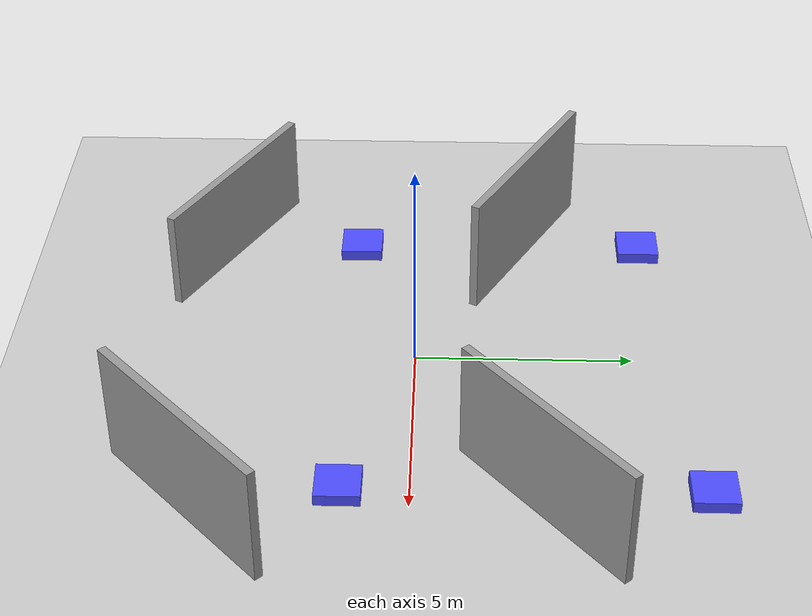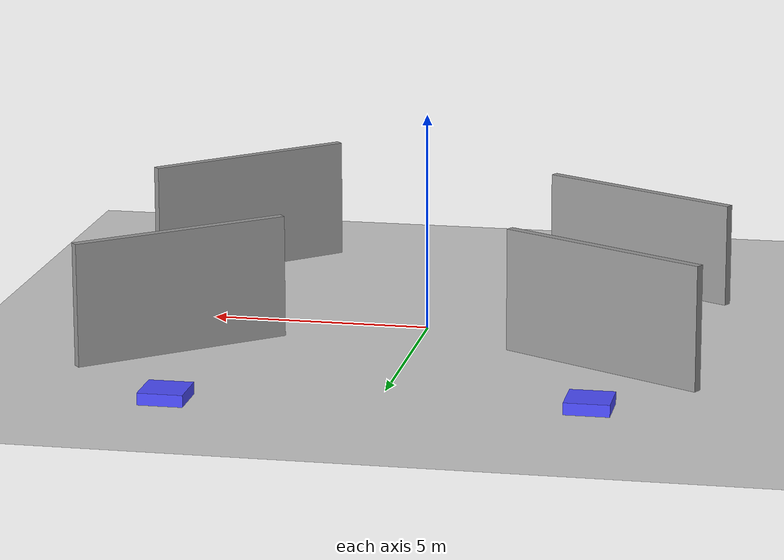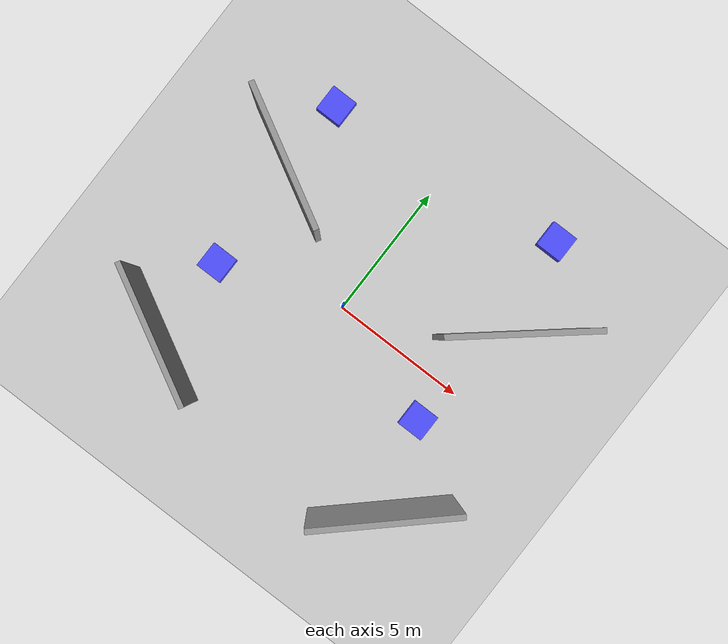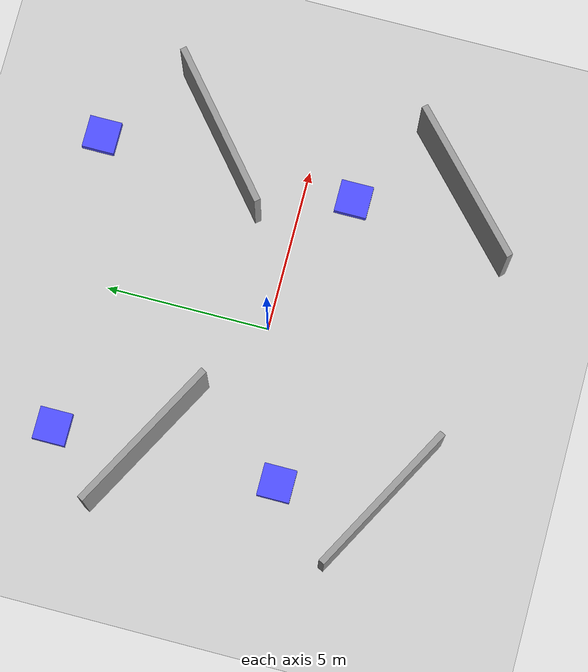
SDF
<sdf version="1.6">
 <world name="default">
  <light name="sun" type="directional">
   <pose>0 0 10 0 -0 0</pose>
   <diffuse>0.8 0.8 0.8 1</diffuse>
   <specular>0.2 0.2 0.2 1</specular>
   <attenuation>
    <range>1000</range>
    <constant>0.9</constant>
    <linear>0.01</linear>
    <quadratic>0.001</quadratic>
   </attenuation>
   <direction>-0.5 0.1 -0.9</direction>
  </light>
  <model name="ground_plane">
   <static>1</static>
   <link name="link">
    <collision name="collision">
     <geometry><plane><normal>0 0 1</normal><size>100 100</size></plane></geometry>
     <surface>
      <contact><collide_bitmask>65535</collide_bitmask></contact>
      <friction><ode><mu>100</mu><mu2>50</mu2></ode></friction>
     </surface>
    </collision>
    <visual name="visual">
     <cast_shadows>0</cast_shadows>
     <geometry><plane><normal>0 0 1</normal><size>100 100</size></plane></geometry>
     <material>
      <script><uri>file://media/materials/scripts/gazebo.material</uri><name>Gazebo/Grey</name></script>
     </material>
    </visual>
   </link>
  </model>
  <gravity>0 0 -9.8</gravity>
  <magnetic_field>6e-06 2.3e-05 -4.2e-05</magnetic_field>
  <atmosphere type="adiabatic"/>
  <physics name="default_physics" default="0" type="ode">
   <max_step_size>0.001</max_step_size>
   <real_time_factor>1</real_time_factor>
   <real_time_update_rate>1000</real_time_update_rate>
  </physics>
  <scene><ambient>0.4 0.4 0.4 1</ambient><background>0.7 0.7 0.7 1</background><shadows>1</shadows></scene>
  <audio><device>default</device></audio>
  <spherical_coordinates>
   <surface_model>EARTH_WGS84</surface_model>
   <latitude_deg>0</latitude_deg>
   <longitude_deg>0</longitude_deg>
   <elevation>0</elevation>
   <heading_deg>0</heading_deg>
  </spherical_coordinates>
  <model name="grey_wall">
   <link name="link">
    <pose>0 0 1.4 0 -0 0</pose>
    <inertial>
     <mass>1</mass>
     <inertia><ixx>1</ixx><ixy>0</ixy><ixz>0</ixz><iyy>1</iyy><iyz>0</iyz><izz>1</izz></inertia>
    </inertial>
    <visual name="visual">
     <cast_shadows>0</cast_shadows>
     <geometry><box><size>5.13 0.2 2.8</size></box></geometry>
     <material>
      <script>
       <uri>model://grey_wall/materials/scripts</uri>
       <uri>model://grey_wall/materials/textures</uri>
       <name>vrc/grey_wall</name>
      </script>
      <shader type="vertex"><normal_map>__default__</normal_map></shader>
      <ambient>1 1 1 1</ambient>
      <diffuse>1 1 1 1</diffuse>
      <specular>0 0 0 1</specular>
      <emissive>0 0 0 1</emissive>
     </material>
    </visual>
    <collision name="collision">
     <geometry><box><size>7.5 0.2 2.8</size></box></geometry>
     <surface>
      <friction>
       <ode><mu>1</mu><mu2>1</mu2><fdir1>0 0 0</fdir1><slip1>0</slip1><slip2>0</slip2></ode>
       <torsional>
        <coefficient>1</coefficient>
        <patch_radius>0</patch_radius>
        <surface_radius>0</surface_radius>
        <use_patch_radius>1</use_patch_radius>
        <ode><slip>0</slip></ode>
       </torsional>
      </friction>
      <bounce><restitution_coefficient>0</restitution_coefficient><threshold>1e+06</threshold></bounce>
      <contact>
       <collide_without_contact>0</collide_without_contact>
       <collide_without_contact_bitmask>1</collide_without_contact_bitmask>
       <collide_bitmask>1</collide_bitmask>
       <ode>
        <soft_cfm>0</soft_cfm>
        <soft_erp>0.2</soft_erp>
        <kp>1e+13</kp>
        <kd>1</kd>
        <max_vel>0.01</max_vel>
        <min_depth>0</min_depth>
       </ode>
       <bullet>
        <split_impulse>1</split_impulse>
        <split_impulse_penetration_threshold>-0.01</split_impulse_penetration_threshold>
        <soft_cfm>0</soft_cfm>
        <soft_erp>0.2</soft_erp>
        <kp>1e+13</kp>
        <kd>1</kd>
       </bullet>
      </contact>
     </surface>
    </collision>
   </link>
   <static>1</static>
   <pose>5.27664 -4.65322 0 0 -0 0.750001</pose>
  </model>
  <model name="grey_wall_0">
   <link name="link">
    <pose>0 0 1.4 0 -0 0</pose>
    <inertial>
     <mass>1</mass>
     <inertia><ixx>1</ixx><ixy>0</ixy><ixz>0</ixz><iyy>1</iyy><iyz>0</iyz><izz>1</izz></inertia>
    </inertial>
    <visual name="visual">
     <cast_shadows>0</cast_shadows>
     <geometry><box><size>5.13 0.2 2.8</size></box></geometry>
     <material>
      <script>
       <uri>model://grey_wall/materials/scripts</uri>
       <uri>model://grey_wall/materials/textures</uri>
       <name>vrc/grey_wall</name>
      </script>
      <shader type="vertex"><normal_map>__default__</normal_map></shader>
      <ambient>1 1 1 1</ambient>
      <diffuse>1 1 1 1</diffuse>
      <specular>0 0 0 1</specular>
      <emissive>0 0 0 1</emissive>
     </material>
    </visual>
    <collision name="collision">
     <geometry><box><size>7.5 0.2 2.8</size></box></geometry>
     <surface>
      <friction>
       <ode><mu>1</mu><mu2>1</mu2><fdir1>0 0 0</fdir1><slip1>0</slip1><slip2>0</slip2></ode>
       <torsional>
        <coefficient>1</coefficient>
        <patch_radius>0</patch_radius>
        <surface_radius>0</surface_radius>
        <use_patch_radius>1</use_patch_radius>
        <ode><slip>0</slip></ode>
       </torsional>
      </friction>
      <bounce><restitution_coefficient>0</restitution_coefficient><threshold>1e+06</threshold></bounce>
      <contact>
       <collide_without_contact>0</collide_without_contact>
       <collide_without_contact_bitmask>1</collide_without_contact_bitmask>
       <collide_bitmask>1</collide_bitmask>
       <ode>
        <soft_cfm>0</soft_cfm>
        <soft_erp>0.2</soft_erp>
        <kp>1e+13</kp>
        <kd>1</kd>
        <max_vel>0.01</max_vel>
        <min_depth>0</min_depth>
       </ode>
       <bullet>
        <split_impulse>1</split_impulse>
        <split_impulse_penetration_threshold>-0.01</split_impulse_penetration_threshold>
        <soft_cfm>0</soft_cfm>
        <soft_erp>0.2</soft_erp>
        <kp>1e+13</kp>
        <kd>1</kd>
       </bullet>
      </contact>
     </surface>
    </collision>
   </link>
   <static>1</static>
   <pose>5.09437 2.78139 0 0 -0 0.7</pose>
  </model>
  <model name="grey_wall_1">
   <link name="link">
    <pose>0 0 1.4 0 -0 0</pose>
    <inertial>
     <mass>1</mass>
     <inertia><ixx>1</ixx><ixy>0</ixy><ixz>0</ixz><iyy>1</iyy><iyz>0</iyz><izz>1</izz></inertia>
    </inertial>
    <visual name="visual">
     <cast_shadows>0</cast_shadows>
     <geometry><box><size>5.13 0.2 2.8</size></box></geometry>
     <material>
      <script>
       <uri>model://grey_wall/materials/scripts</uri>
       <uri>model://grey_wall/materials/textures</uri>
       <name>vrc/grey_wall</name>
      </script>
      <shader type="vertex"><normal_map>__default__</normal_map></shader>
      <ambient>1 1 1 1</ambient>
      <diffuse>1 1 1 1</diffuse>
      <specular>0 0 0 1</specular>
      <emissive>0 0 0 1</emissive>
     </material>
    </visual>
    <collision name="collision">
     <geometry><box><size>7.5 0.2 2.8</size></box></geometry>
     <surface>
      <friction>
       <ode><mu>1</mu><mu2>1</mu2><fdir1>0 0 0</fdir1><slip1>0</slip1><slip2>0</slip2></ode>
       <torsional>
        <coefficient>1</coefficient>
        <patch_radius>0</patch_radius>
        <surface_radius>0</surface_radius>
        <use_patch_radius>1</use_patch_radius>
        <ode><slip>0</slip></ode>
       </torsional>
      </friction>
      <bounce><restitution_coefficient>0</restitution_coefficient><threshold>1e+06</threshold></bounce>
      <contact>
       <collide_without_contact>0</collide_without_contact>
       <collide_without_contact_bitmask>1</collide_without_contact_bitmask>
       <collide_bitmask>1</collide_bitmask>
       <ode>
        <soft_cfm>0</soft_cfm>
        <soft_erp>0.2</soft_erp>
        <kp>1e+13</kp>
        <kd>1</kd>
        <max_vel>0.01</max_vel>
        <min_depth>0</min_depth>
       </ode>
       <bullet>
        <split_impulse>1</split_impulse>
        <split_impulse_penetration_threshold>-0.01</split_impulse_penetration_threshold>
        <soft_cfm>0</soft_cfm>
        <soft_erp>0.2</soft_erp>
        <kp>1e+13</kp>
        <kd>1</kd>
       </bullet>
      </contact>
     </surface>
    </collision>
   </link>
   <static>1</static>
   <pose>-4.32302 -4.5564 -0.422945 0 0 -0.5</pose>
  </model>
  <model name="grey_wall_2">
   <link name="link">
    <pose>0 0 1.4 0 -0 0</pose>
    <inertial>
     <mass>1</mass>
     <inertia><ixx>1</ixx><ixy>0</ixy><ixz>0</ixz><iyy>1</iyy><iyz>0</iyz><izz>1</izz></inertia>
    </inertial>
    <visual name="visual">
     <cast_shadows>0</cast_shadows>
     <geometry><box><size>5.13 0.2 2.8</size></box></geometry>
     <material>
      <script>
       <uri>model://grey_wall/materials/scripts</uri>
       <uri>model://grey_wall/materials/textures</uri>
       <name>vrc/grey_wall</name>
      </script>
      <shader type="vertex"><normal_map>__default__</normal_map></shader>
      <ambient>1 1 1 1</ambient>
      <diffuse>1 1 1 1</diffuse>
      <specular>0 0 0 1</specular>
      <emissive>0 0 0 1</emissive>
     </material>
    </visual>
    <collision name="collision">
     <geometry><box><size>7.5 0.2 2.8</size></box></geometry>
     <surface>
      <friction>
       <ode><mu>1</mu><mu2>1</mu2><fdir1>0 0 0</fdir1><slip1>0</slip1><slip2>0</slip2></ode>
       <torsional>
        <coefficient>1</coefficient>
        <patch_radius>0</patch_radius>
        <surface_radius>0</surface_radius>
        <use_patch_radius>1</use_patch_radius>
        <ode><slip>0</slip></ode>
       </torsional>
      </friction>
      <bounce><restitution_coefficient>0</restitution_coefficient><threshold>1e+06</threshold></bounce>
      <contact>
       <collide_without_contact>0</collide_without_contact>
       <collide_without_contact_bitmask>1</collide_without_contact_bitmask>
       <collide_bitmask>1</collide_bitmask>
       <ode>
        <soft_cfm>0</soft_cfm>
        <soft_erp>0.2</soft_erp>
        <kp>1e+13</kp>
        <kd>1</kd>
        <max_vel>0.01</max_vel>
        <min_depth>0</min_depth>
       </ode>
       <bullet>
        <split_impulse>1</split_impulse>
        <split_impulse_penetration_threshold>-0.01</split_impulse_penetration_threshold>
        <soft_cfm>0</soft_cfm>
        <soft_erp>0.2</soft_erp>
        <kp>1e+13</kp>
        <kd>1</kd>
       </bullet>
      </contact>
     </surface>
    </collision>
   </link>
   <static>1</static>
   <pose>-4.35767 2.56439 0 0 0 -0.5</pose>
  </model>
  <model name="visit_clone_1">
   <link name="link">
    <inertial>
     <mass>1</mass>
     <inertia>
      <ixx>0.166667</ixx>
      <ixy>0</ixy>
      <ixz>0</ixz>
      <iyy>0.166667</iyy>
      <iyz>0</iyz>
      <izz>0.166667</izz>
     </inertia>
    </inertial>
    <visual name="visual">
     <geometry><box><size>1 1 0.5</size></box></geometry>
     <material>
      <script><name>Gazebo/Grey</name><uri>file://media/materials/scripts/gazebo.material</uri></script>
      <shader type="vertex"><normal_map>__default__</normal_map></shader>
      <ambient>0.3 0.3 1 1</ambient>
      <diffuse>0.7 0.7 0.7 1</diffuse>
      <specular>0.01 0.01 0.01 1</specular>
      <emissive>0 0 0 1</emissive>
     </material>
    </visual>
    <collision name="collision">
     <geometry><box><size>1 1 1</size></box></geometry>
     <surface>
      <friction>
       <ode><mu>1</mu><mu2>1</mu2><fdir1>0 0 0</fdir1><slip1>0</slip1><slip2>0</slip2></ode>
       <torsional>
        <coefficient>1</coefficient>
        <patch_radius>0</patch_radius>
        <surface_radius>0</surface_radius>
        <use_patch_radius>1</use_patch_radius>
        <ode><slip>0</slip></ode>
       </torsional>
      </friction>
      <bounce><restitution_coefficient>0</restitution_coefficient><threshold>1e+06</threshold></bounce>
      <contact>
       <collide_without_contact>0</collide_without_contact>
       <collide_without_contact_bitmask>1</collide_without_contact_bitmask>
       <collide_bitmask>1</collide_bitmask>
       <ode>
        <soft_cfm>0</soft_cfm>
        <soft_erp>0.2</soft_erp>
        <kp>1e+13</kp>
        <kd>1</kd>
        <max_vel>0.01</max_vel>
        <min_depth>0</min_depth>
       </ode>
       <bullet>
        <split_impulse>1</split_impulse>
        <split_impulse_penetration_threshold>-0.01</split_impulse_penetration_threshold>
        <soft_cfm>0</soft_cfm>
        <soft_erp>0.2</soft_erp>
        <kp>1e+13</kp>
        <kd>1</kd>
       </bullet>
      </contact>
     </surface>
    </collision>
   </link>
   <static>0</static>
   <pose>-4.48997 5.44337 0 0 -0 0</pose>
  </model>
  <model name="visit_clone_1_clone">
   <link name="link">
    <inertial>
     <mass>1</mass>
     <inertia>
      <ixx>0.166667</ixx>
      <ixy>0</ixy>
      <ixz>0</ixz>
      <iyy>0.166667</iyy>
      <iyz>0</iyz>
      <izz>0.166667</izz>
     </inertia>
    </inertial>
    <visual name="visual">
     <geometry><box><size>1 1 0.5</size></box></geometry>
     <material>
      <script><name>Gazebo/Grey</name><uri>file://media/materials/scripts/gazebo.material</uri></script>
      <shader type="vertex"><normal_map>__default__</normal_map></shader>
      <ambient>0.3 0.3 1 1</ambient>
      <diffuse>0.7 0.7 0.7 1</diffuse>
      <specular>0.01 0.01 0.01 1</specular>
      <emissive>0 0 0 1</emissive>
     </material>
    </visual>
    <collision name="collision">
     <geometry><box><size>1 1 1</size></box></geometry>
     <surface>
      <friction>
       <ode><mu>1</mu><mu2>1</mu2><fdir1>0 0 0</fdir1><slip1>0</slip1><slip2>0</slip2></ode>
       <torsional>
        <coefficient>1</coefficient>
        <patch_radius>0</patch_radius>
        <surface_radius>0</surface_radius>
        <use_patch_radius>1</use_patch_radius>
        <ode><slip>0</slip></ode>
       </torsional>
      </friction>
      <bounce><restitution_coefficient>0</restitution_coefficient><threshold>1e+06</threshold></bounce>
      <contact>
       <collide_without_contact>0</collide_without_contact>
       <collide_without_contact_bitmask>1</collide_without_contact_bitmask>
       <collide_bitmask>1</collide_bitmask>
       <ode>
        <soft_cfm>0</soft_cfm>
        <soft_erp>0.2</soft_erp>
        <kp>1e+13</kp>
        <kd>1</kd>
        <max_vel>0.01</max_vel>
        <min_depth>0</min_depth>
       </ode>
       <bullet>
        <split_impulse>1</split_impulse>
        <split_impulse_penetration_threshold>-0.01</split_impulse_penetration_threshold>
        <soft_cfm>0</soft_cfm>
        <soft_erp>0.2</soft_erp>
        <kp>1e+13</kp>
        <kd>1</kd>
       </bullet>
      </contact>
     </surface>
    </collision>
   </link>
   <static>0</static>
   <pose>-4.43794 -1.44518 0 0 -0 0</pose>
  </model>
  <model name="visit_clone_1_clone_clone">
   <link name="link">
    <inertial>
     <mass>1</mass>
     <inertia>
      <ixx>0.166667</ixx>
      <ixy>0</ixy>
      <ixz>0</ixz>
      <iyy>0.166667</iyy>
      <iyz>0</iyz>
      <izz>0.166667</izz>
     </inertia>
    </inertial>
    <visual name="visual">
     <geometry><box><size>1 1 0.5</size></box></geometry>
     <material>
      <script><name>Gazebo/Grey</name><uri>file://media/materials/scripts/gazebo.material</uri></script>
      <shader type="vertex"><normal_map>__default__</normal_map></shader>
      <ambient>0.3 0.3 1 1</ambient>
      <diffuse>0.7 0.7 0.7 1</diffuse>
      <specular>0.01 0.01 0.01 1</specular>
      <emissive>0 0 0 1</emissive>
     </material>
    </visual>
    <collision name="collision">
     <geometry><box><size>1 1 1</size></box></geometry>
     <surface>
      <friction>
       <ode><mu>1</mu><mu2>1</mu2><fdir1>0 0 0</fdir1><slip1>0</slip1><slip2>0</slip2></ode>
       <torsional>
        <coefficient>1</coefficient>
        <patch_radius>0</patch_radius>
        <surface_radius>0</surface_radius>
        <use_patch_radius>1</use_patch_radius>
        <ode><slip>0</slip></ode>
       </torsional>
      </friction>
      <bounce><restitution_coefficient>0</restitution_coefficient><threshold>1e+06</threshold></bounce>
      <contact>
       <collide_without_contact>0</collide_without_contact>
       <collide_without_contact_bitmask>1</collide_without_contact_bitmask>
       <collide_bitmask>1</collide_bitmask>
       <ode>
        <soft_cfm>0</soft_cfm>
        <soft_erp>0.2</soft_erp>
        <kp>1e+13</kp>
        <kd>1</kd>
        <max_vel>0.01</max_vel>
        <min_depth>0</min_depth>
       </ode>
       <bullet>
        <split_impulse>1</split_impulse>
        <split_impulse_penetration_threshold>-0.01</split_impulse_penetration_threshold>
        <soft_cfm>0</soft_cfm>
        <soft_erp>0.2</soft_erp>
        <kp>1e+13</kp>
        <kd>1</kd>
       </bullet>
      </contact>
     </surface>
    </collision>
   </link>
   <static>0</static>
   <pose>4.50732 -1.50221 0 0 -0 0</pose>
  </model>
  <model name="visit_clone_1_clone_clone_0">
   <link name="link">
    <inertial>
     <mass>1</mass>
     <inertia>
      <ixx>0.166667</ixx>
      <ixy>0</ixy>
      <ixz>0</ixz>
      <iyy>0.166667</iyy>
      <iyz>0</iyz>
      <izz>0.166667</izz>
     </inertia>
    </inertial>
    <visual name="visual">
     <geometry><box><size>1 1 0.5</size></box></geometry>
     <material>
      <script><name>Gazebo/Grey</name><uri>file://media/materials/scripts/gazebo.material</uri></script>
      <shader type="vertex"><normal_map>__default__</normal_map></shader>
      <ambient>0.3 0.3 1 1</ambient>
      <diffuse>0.7 0.7 0.7 1</diffuse>
      <specular>0.01 0.01 0.01 1</specular>
      <emissive>0 0 0 1</emissive>
     </material>
    </visual>
    <collision name="collision">
     <geometry><box><size>1 1 1</size></box></geometry>
     <surface>
      <friction>
       <ode><mu>1</mu><mu2>1</mu2><fdir1>0 0 0</fdir1><slip1>0</slip1><slip2>0</slip2></ode>
       <torsional>
        <coefficient>1</coefficient>
        <patch_radius>0</patch_radius>
        <surface_radius>0</surface_radius>
        <use_patch_radius>1</use_patch_radius>
        <ode><slip>0</slip></ode>
       </torsional>
      </friction>
      <bounce><restitution_coefficient>0</restitution_coefficient><threshold>1e+06</threshold></bounce>
      <contact>
       <collide_without_contact>0</collide_without_contact>
       <collide_without_contact_bitmask>1</collide_without_contact_bitmask>
       <collide_bitmask>1</collide_bitmask>
       <ode>
        <soft_cfm>0</soft_cfm>
        <soft_erp>0.2</soft_erp>
        <kp>1e+13</kp>
        <kd>1</kd>
        <max_vel>0.01</max_vel>
        <min_depth>0</min_depth>
       </ode>
       <bullet>
        <split_impulse>1</split_impulse>
        <split_impulse_penetration_threshold>-0.01</split_impulse_penetration_threshold>
        <soft_cfm>0</soft_cfm>
        <soft_erp>0.2</soft_erp>
        <kp>1e+13</kp>
        <kd>1</kd>
       </bullet>
      </contact>
     </surface>
    </collision>
   </link>
   <static>0</static>
   <pose>4.50976 6.41184 0 0 -0 0</pose>
  </model>
 </world>
</sdf>
